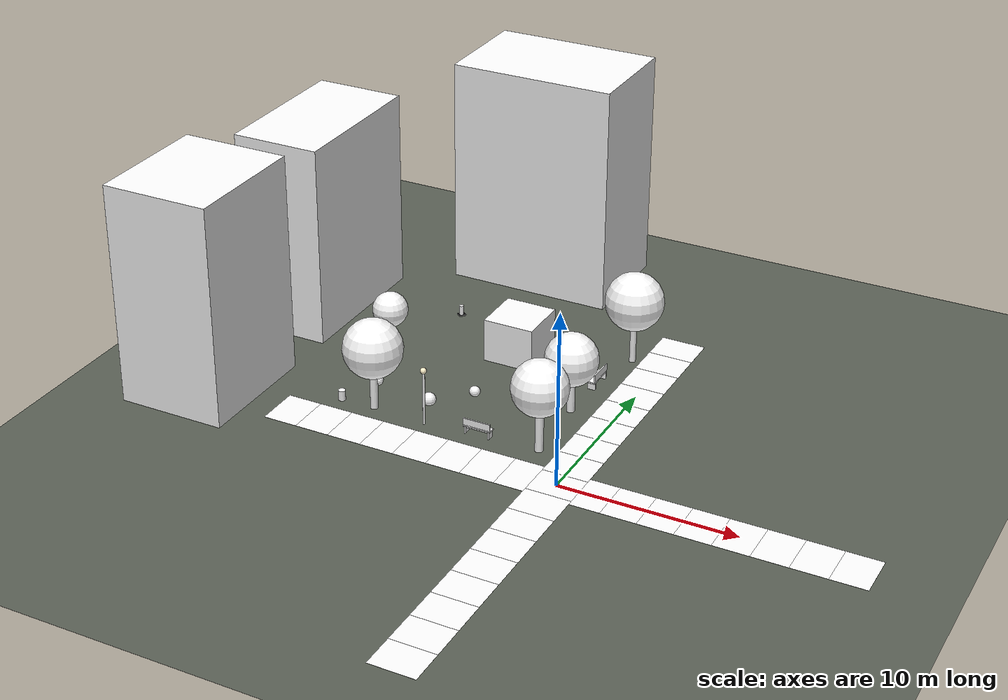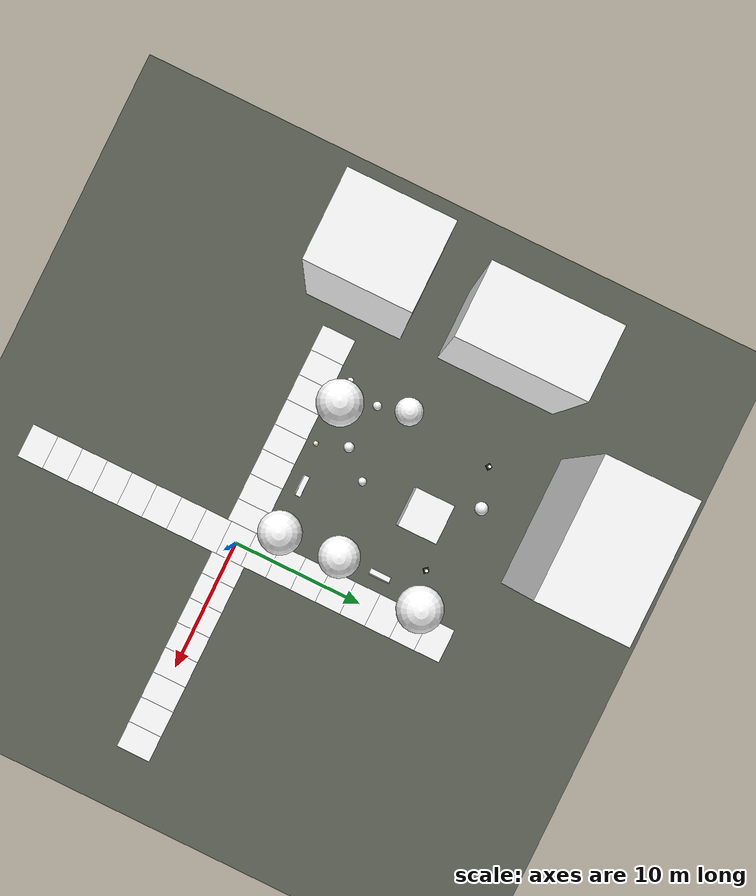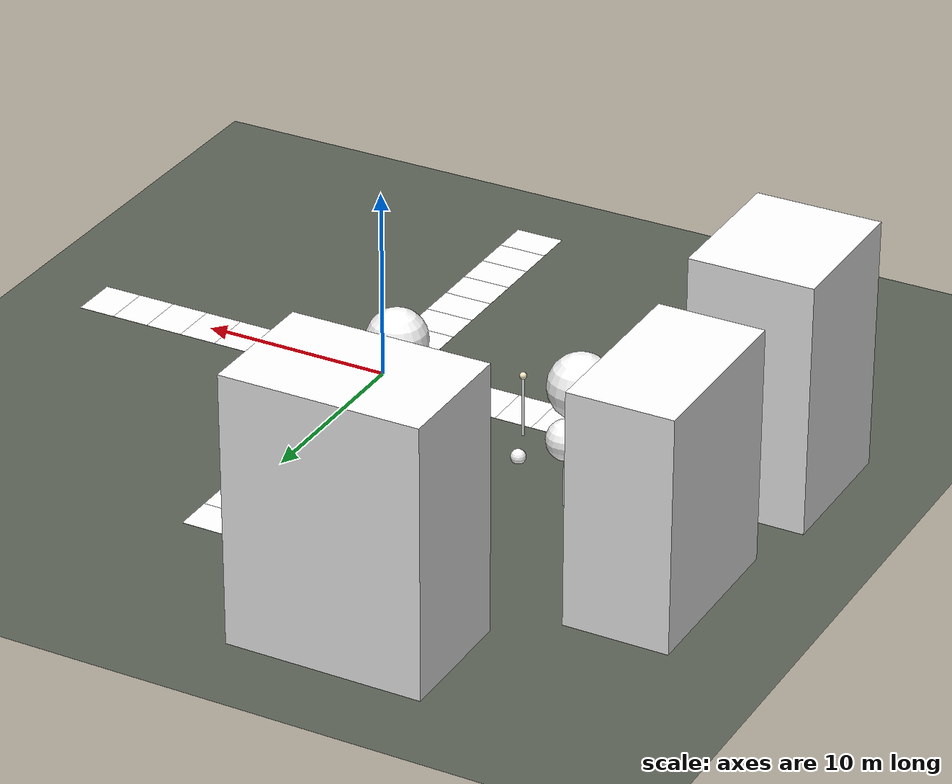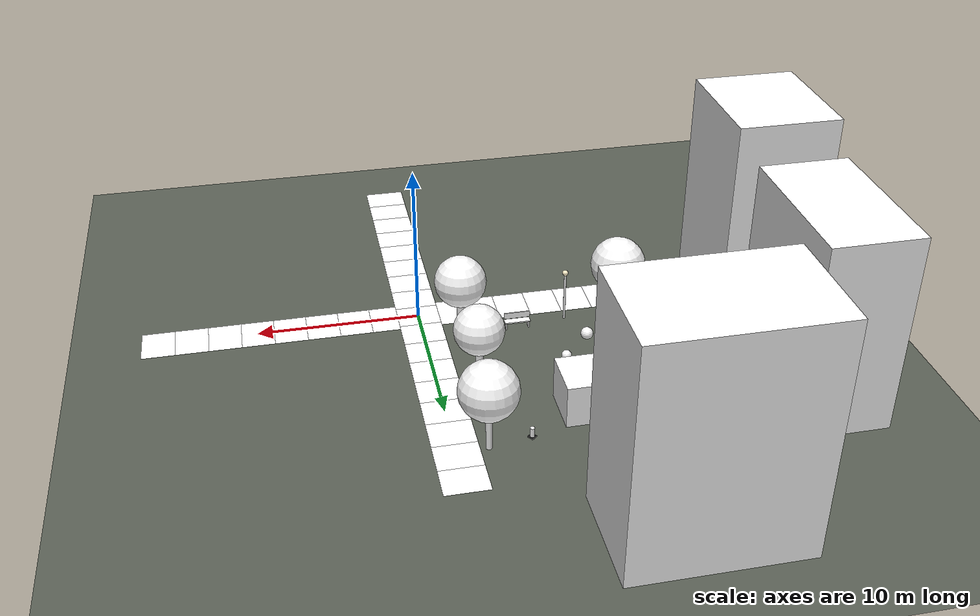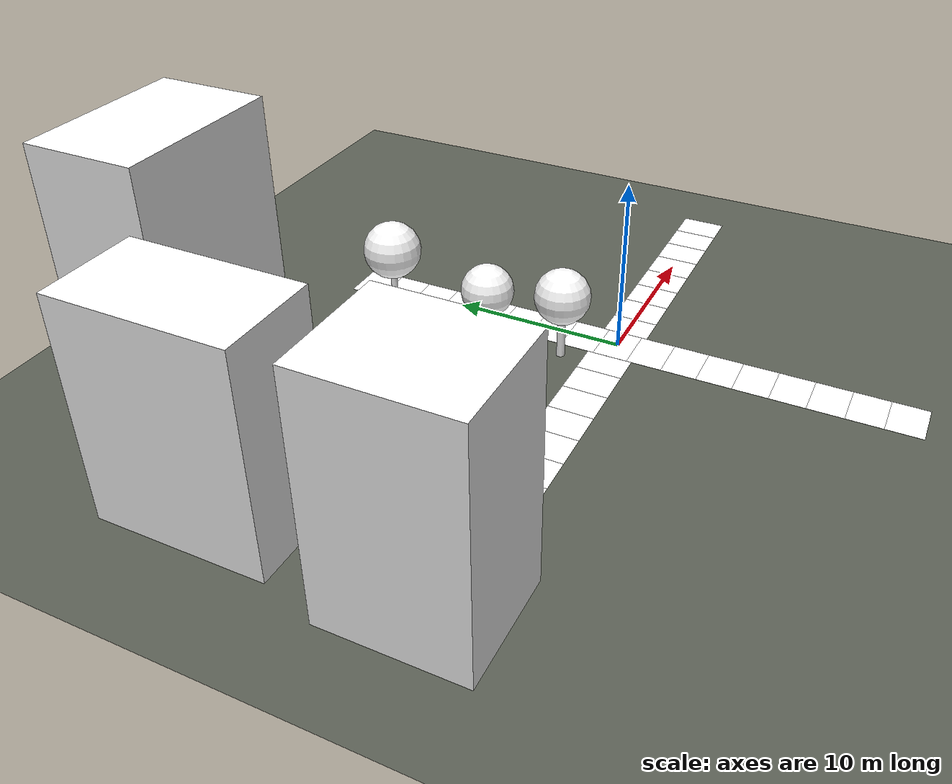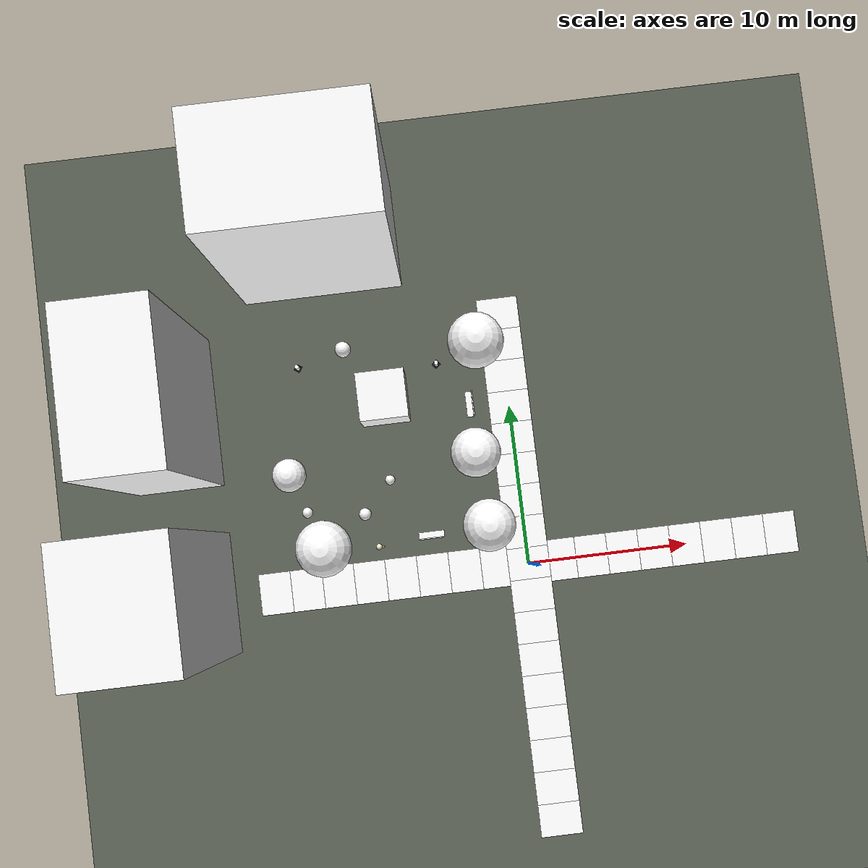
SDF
<sdf version="1.9">
 <world name="park_0">
  <model name="ground_plane">
   <static>true</static>
   <link name="link">
    <collision name="collision">
     <geometry><plane><normal>0 0 1</normal><size>300.000 300.000</size></plane></geometry>
     <surface><friction><ode><mu>1.0</mu><mu2>1.0</mu2></ode></friction></surface>
    </collision>
    <visual name="visual">
     <geometry><plane><normal>0 0 1</normal><size>300.000 300.000</size></plane></geometry>
     <material>
      <ambient>0.350 0.370 0.330 1</ambient>
      <diffuse>0.350 0.370 0.330 1</diffuse>
      <specular>0.08 0.08 0.08 1</specular>
     </material>
    </visual>
   </link>
  </model>
  <model name="paths_2">
   <static>true</static>
   <link name="link">
    <visual name="v0">
     <pose>-16.000 0.000 0.008 0.0000 0.0000 0.0000</pose>
     <geometry><plane><normal>0 0 1</normal><size>2.000 2.600</size></plane></geometry>
     <material>
      <ambient>1.000 1.000 1.000 1</ambient>
      <diffuse>1.000 1.000 1.000 1</diffuse>
      <specular>0.08 0.08 0.08 1</specular>
      <pbr>
       <metal>
        <albedo_map>model://omnivla_textures/materials/textures/paving.png</albedo_map>
        <roughness>0.85</roughness>
        <metalness>0.0</metalness>
       </metal>
      </pbr>
     </material>
    </visual>
    <visual name="v1">
     <pose>0.000 -16.000 0.009 0.0000 0.0000 0.0000</pose>
     <geometry><plane><normal>0 0 1</normal><size>2.600 2.000</size></plane></geometry>
     <material>
      <ambient>1.000 1.000 1.000 1</ambient>
      <diffuse>1.000 1.000 1.000 1</diffuse>
      <specular>0.08 0.08 0.08 1</specular>
      <pbr>
       <metal>
        <albedo_map>model://omnivla_textures/materials/textures/paving.png</albedo_map>
        <roughness>0.85</roughness>
        <metalness>0.0</metalness>
       </metal>
      </pbr>
     </material>
    </visual>
    <visual name="v2">
     <pose>-14.000 0.000 0.008 0.0000 0.0000 0.0000</pose>
     <geometry><plane><normal>0 0 1</normal><size>2.000 2.600</size></plane></geometry>
     <material>
      <ambient>1.000 1.000 1.000 1</ambient>
      <diffuse>1.000 1.000 1.000 1</diffuse>
      <specular>0.08 0.08 0.08 1</specular>
      <pbr>
       <metal>
        <albedo_map>model://omnivla_textures/materials/textures/paving.png</albedo_map>
        <roughness>0.85</roughness>
        <metalness>0.0</metalness>
       </metal>
      </pbr>
     </material>
    </visual>
    <visual name="v3">
     <pose>0.000 -14.000 0.009 0.0000 0.0000 0.0000</pose>
     <geometry><plane><normal>0 0 1</normal><size>2.600 2.000</size></plane></geometry>
     <material>
      <ambient>1.000 1.000 1.000 1</ambient>
      <diffuse>1.000 1.000 1.000 1</diffuse>
      <specular>0.08 0.08 0.08 1</specular>
      <pbr>
       <metal>
        <albedo_map>model://omnivla_textures/materials/textures/paving.png</albedo_map>
        <roughness>0.85</roughness>
        <metalness>0.0</metalness>
       </metal>
      </pbr>
     </material>
    </visual>
    <visual name="v4">
     <pose>-12.000 0.000 0.008 0.0000 0.0000 0.0000</pose>
     <geometry><plane><normal>0 0 1</normal><size>2.000 2.600</size></plane></geometry>
     <material>
      <ambient>1.000 1.000 1.000 1</ambient>
      <diffuse>1.000 1.000 1.000 1</diffuse>
      <specular>0.08 0.08 0.08 1</specular>
      <pbr>
       <metal>
        <albedo_map>model://omnivla_textures/materials/textures/paving.png</albedo_map>
        <roughness>0.85</roughness>
        <metalness>0.0</metalness>
       </metal>
      </pbr>
     </material>
    </visual>
    <visual name="v5">
     <pose>0.000 -12.000 0.009 0.0000 0.0000 0.0000</pose>
     <geometry><plane><normal>0 0 1</normal><size>2.600 2.000</size></plane></geometry>
     <material>
      <ambient>1.000 1.000 1.000 1</ambient>
      <diffuse>1.000 1.000 1.000 1</diffuse>
      <specular>0.08 0.08 0.08 1</specular>
      <pbr>
       <metal>
        <albedo_map>model://omnivla_textures/materials/textures/paving.png</albedo_map>
        <roughness>0.85</roughness>
        <metalness>0.0</metalness>
       </metal>
      </pbr>
     </material>
    </visual>
    <visual name="v6">
     <pose>-10.000 0.000 0.008 0.0000 0.0000 0.0000</pose>
     <geometry><plane><normal>0 0 1</normal><size>2.000 2.600</size></plane></geometry>
     <material>
      <ambient>1.000 1.000 1.000 1</ambient>
      <diffuse>1.000 1.000 1.000 1</diffuse>
      <specular>0.08 0.08 0.08 1</specular>
      <pbr>
       <metal>
        <albedo_map>model://omnivla_textures/materials/textures/paving.png</albedo_map>
        <roughness>0.85</roughness>
        <metalness>0.0</metalness>
       </metal>
      </pbr>
     </material>
    </visual>
    <visual name="v7">
     <pose>0.000 -10.000 0.009 0.0000 0.0000 0.0000</pose>
     <geometry><plane><normal>0 0 1</normal><size>2.600 2.000</size></plane></geometry>
     <material>
      <ambient>1.000 1.000 1.000 1</ambient>
      <diffuse>1.000 1.000 1.000 1</diffuse>
      <specular>0.08 0.08 0.08 1</specular>
      <pbr>
       <metal>
        <albedo_map>model://omnivla_textures/materials/textures/paving.png</albedo_map>
        <roughness>0.85</roughness>
        <metalness>0.0</metalness>
       </metal>
      </pbr>
     </material>
    </visual>
    <visual name="v8">
     <pose>-8.000 0.000 0.008 0.0000 0.0000 0.0000</pose>
     <geometry><plane><normal>0 0 1</normal><size>2.000 2.600</size></plane></geometry>
     <material>
      <ambient>1.000 1.000 1.000 1</ambient>
      <diffuse>1.000 1.000 1.000 1</diffuse>
      <specular>0.08 0.08 0.08 1</specular>
      <pbr>
       <metal>
        <albedo_map>model://omnivla_textures/materials/textures/paving.png</albedo_map>
        <roughness>0.85</roughness>
        <metalness>0.0</metalness>
       </metal>
      </pbr>
     </material>
    </visual>
    <visual name="v9">
     <pose>0.000 -8.000 0.009 0.0000 0.0000 0.0000</pose>
     <geometry><plane><normal>0 0 1</normal><size>2.600 2.000</size></plane></geometry>
     <material>
      <ambient>1.000 1.000 1.000 1</ambient>
      <diffuse>1.000 1.000 1.000 1</diffuse>
      <specular>0.08 0.08 0.08 1</specular>
      <pbr>
       <metal>
        <albedo_map>model://omnivla_textures/materials/textures/paving.png</albedo_map>
        <roughness>0.85</roughness>
        <metalness>0.0</metalness>
       </metal>
      </pbr>
     </material>
    </visual>
    <visual name="v10">
     <pose>-6.000 0.000 0.008 0.0000 0.0000 0.0000</pose>
     <geometry><plane><normal>0 0 1</normal><size>2.000 2.600</size></plane></geometry>
     <material>
      <ambient>1.000 1.000 1.000 1</ambient>
      <diffuse>1.000 1.000 1.000 1</diffuse>
      <specular>0.08 0.08 0.08 1</specular>
      <pbr>
       <metal>
        <albedo_map>model://omnivla_textures/materials/textures/paving.png</albedo_map>
        <roughness>0.85</roughness>
        <metalness>0.0</metalness>
       </metal>
      </pbr>
     </material>
    </visual>
    <visual name="v11">
     <pose>0.000 -6.000 0.009 0.0000 0.0000 0.0000</pose>
     <geometry><plane><normal>0 0 1</normal><size>2.600 2.000</size></plane></geometry>
     <material>
      <ambient>1.000 1.000 1.000 1</ambient>
      <diffuse>1.000 1.000 1.000 1</diffuse>
      <specular>0.08 0.08 0.08 1</specular>
      <pbr>
       <metal>
        <albedo_map>model://omnivla_textures/materials/textures/paving.png</albedo_map>
        <roughness>0.85</roughness>
        <metalness>0.0</metalness>
       </metal>
      </pbr>
     </material>
    </visual>
    <visual name="v12">
     <pose>-4.000 0.000 0.008 0.0000 0.0000 0.0000</pose>
     <geometry><plane><normal>0 0 1</normal><size>2.000 2.600</size></plane></geometry>
     <material>
      <ambient>1.000 1.000 1.000 1</ambient>
      <diffuse>1.000 1.000 1.000 1</diffuse>
      <specular>0.08 0.08 0.08 1</specular>
      <pbr>
       <metal>
        <albedo_map>model://omnivla_textures/materials/textures/paving.png</albedo_map>
        <roughness>0.85</roughness>
        <metalness>0.0</metalness>
       </metal>
      </pbr>
     </material>
    </visual>
    <visual name="v13">
     <pose>0.000 -4.000 0.009 0.0000 0.0000 0.0000</pose>
     <geometry><plane><normal>0 0 1</normal><size>2.600 2.000</size></plane></geometry>
     <material>
      <ambient>1.000 1.000 1.000 1</ambient>
      <diffuse>1.000 1.000 1.000 1</diffuse>
      <specular>0.08 0.08 0.08 1</specular>
      <pbr>
       <metal>
        <albedo_map>model://omnivla_textures/materials/textures/paving.png</albedo_map>
        <roughness>0.85</roughness>
        <metalness>0.0</metalness>
       </metal>
      </pbr>
     </material>
    </visual>
    <visual name="v14">
     <pose>-2.000 0.000 0.008 0.0000 0.0000 0.0000</pose>
     <geometry><plane><normal>0 0 1</normal><size>2.000 2.600</size></plane></geometry>
     <material>
      <ambient>1.000 1.000 1.000 1</ambient>
      <diffuse>1.000 1.000 1.000 1</diffuse>
      <specular>0.08 0.08 0.08 1</specular>
      <pbr>
       <metal>
        <albedo_map>model://omnivla_textures/materials/textures/paving.png</albedo_map>
        <roughness>0.85</roughness>
        <metalness>0.0</metalness>
       </metal>
      </pbr>
     </material>
    </visual>
    <visual name="v15">
     <pose>0.000 -2.000 0.009 0.0000 0.0000 0.0000</pose>
     <geometry><plane><normal>0 0 1</normal><size>2.600 2.000</size></plane></geometry>
     <material>
      <ambient>1.000 1.000 1.000 1</ambient>
      <diffuse>1.000 1.000 1.000 1</diffuse>
      <specular>0.08 0.08 0.08 1</specular>
      <pbr>
       <metal>
        <albedo_map>model://omnivla_textures/materials/textures/paving.png</albedo_map>
        <roughness>0.85</roughness>
        <metalness>0.0</metalness>
       </metal>
      </pbr>
     </material>
    </visual>
    <visual name="v16">
     <pose>0.000 0.000 0.008 0.0000 0.0000 0.0000</pose>
     <geometry><plane><normal>0 0 1</normal><size>2.000 2.600</size></plane></geometry>
     <material>
      <ambient>1.000 1.000 1.000 1</ambient>
      <diffuse>1.000 1.000 1.000 1</diffuse>
      <specular>0.08 0.08 0.08 1</specular>
      <pbr>
       <metal>
        <albedo_map>model://omnivla_textures/materials/textures/paving.png</albedo_map>
        <roughness>0.85</roughness>
        <metalness>0.0</metalness>
       </metal>
      </pbr>
     </material>
    </visual>
    <visual name="v17">
     <pose>0.000 0.000 0.009 0.0000 0.0000 0.0000</pose>
     <geometry><plane><normal>0 0 1</normal><size>2.600 2.000</size></plane></geometry>
     <material>
      <ambient>1.000 1.000 1.000 1</ambient>
      <diffuse>1.000 1.000 1.000 1</diffuse>
      <specular>0.08 0.08 0.08 1</specular>
      <pbr>
       <metal>
        <albedo_map>model://omnivla_textures/materials/textures/paving.png</albedo_map>
        <roughness>0.85</roughness>
        <metalness>0.0</metalness>
       </metal>
      </pbr>
     </material>
    </visual>
    <visual name="v18">
     <pose>2.000 0.000 0.008 0.0000 0.0000 0.0000</pose>
     <geometry><plane><normal>0 0 1</normal><size>2.000 2.600</size></plane></geometry>
     <material>
      <ambient>1.000 1.000 1.000 1</ambient>
      <diffuse>1.000 1.000 1.000 1</diffuse>
      <specular>0.08 0.08 0.08 1</specular>
      <pbr>
       <metal>
        <albedo_map>model://omnivla_textures/materials/textures/paving.png</albedo_map>
        <roughness>0.85</roughness>
        <metalness>0.0</metalness>
       </metal>
      </pbr>
     </material>
    </visual>
    <visual name="v19">
     <pose>0.000 2.000 0.009 0.0000 0.0000 0.0000</pose>
     <geometry><plane><normal>0 0 1</normal><size>2.600 2.000</size></plane></geometry>
     <material>
      <ambient>1.000 1.000 1.000 1</ambient>
      <diffuse>1.000 1.000 1.000 1</diffuse>
      <specular>0.08 0.08 0.08 1</specular>
      <pbr>
       <metal>
        <albedo_map>model://omnivla_textures/materials/textures/paving.png</albedo_map>
        <roughness>0.85</roughness>
        <metalness>0.0</metalness>
       </metal>
      </pbr>
     </material>
    </visual>
    <visual name="v20">
     <pose>4.000 0.000 0.008 0.0000 0.0000 0.0000</pose>
     <geometry><plane><normal>0 0 1</normal><size>2.000 2.600</size></plane></geometry>
     <material>
      <ambient>1.000 1.000 1.000 1</ambient>
      <diffuse>1.000 1.000 1.000 1</diffuse>
      <specular>0.08 0.08 0.08 1</specular>
      <pbr>
       <metal>
        <albedo_map>model://omnivla_textures/materials/textures/paving.png</albedo_map>
        <roughness>0.85</roughness>
        <metalness>0.0</metalness>
       </metal>
      </pbr>
     </material>
    </visual>
    <visual name="v21">
     <pose>0.000 4.000 0.009 0.0000 0.0000 0.0000</pose>
     <geometry><plane><normal>0 0 1</normal><size>2.600 2.000</size></plane></geometry>
     <material>
      <ambient>1.000 1.000 1.000 1</ambient>
      <diffuse>1.000 1.000 1.000 1</diffuse>
      <specular>0.08 0.08 0.08 1</specular>
      <pbr>
       <metal>
        <albedo_map>model://omnivla_textures/materials/textures/paving.png</albedo_map>
        <roughness>0.85</roughness>
        <metalness>0.0</metalness>
       </metal>
      </pbr>
     </material>
    </visual>
    <visual name="v22">
     <pose>6.000 0.000 0.008 0.0000 0.0000 0.0000</pose>
     <geometry><plane><normal>0 0 1</normal><size>2.000 2.600</size></plane></geometry>
     <material>
      <ambient>1.000 1.000 1.000 1</ambient>
      <diffuse>1.000 1.000 1.000 1</diffuse>
      <specular>0.08 0.08 0.08 1</specular>
      <pbr>
       <metal>
        <albedo_map>model://omnivla_textures/materials/textures/paving.png</albedo_map>
        <roughness>0.85</roughness>
        <metalness>0.0</metalness>
       </metal>
      </pbr>
     </material>
    </visual>
    <visual name="v23">
     <pose>0.000 6.000 0.009 0.0000 0.0000 0.0000</pose>
     <geometry><plane><normal>0 0 1</normal><size>2.600 2.000</size></plane></geometry>
     <material>
      <ambient>1.000 1.000 1.000 1</ambient>
      <diffuse>1.000 1.000 1.000 1</diffuse>
      <specular>0.08 0.08 0.08 1</specular>
      <pbr>
       <metal>
        <albedo_map>model://omnivla_textures/materials/textures/paving.png</albedo_map>
        <roughness>0.85</roughness>
        <metalness>0.0</metalness>
       </metal>
      </pbr>
     </material>
    </visual>
    <visual name="v24">
     <pose>8.000 0.000 0.008 0.0000 0.0000 0.0000</pose>
     <geometry><plane><normal>0 0 1</normal><size>2.000 2.600</size></plane></geometry>
     <material>
      <ambient>1.000 1.000 1.000 1</ambient>
      <diffuse>1.000 1.000 1.000 1</diffuse>
      <specular>0.08 0.08 0.08 1</specular>
      <pbr>
       <metal>
        <albedo_map>model://omnivla_textures/materials/textures/paving.png</albedo_map>
        <roughness>0.85</roughness>
        <metalness>0.0</metalness>
       </metal>
      </pbr>
     </material>
    </visual>
    <visual name="v25">
     <pose>0.000 8.000 0.009 0.0000 0.0000 0.0000</pose>
     <geometry><plane><normal>0 0 1</normal><size>2.600 2.000</size></plane></geometry>
     <material>
      <ambient>1.000 1.000 1.000 1</ambient>
      <diffuse>1.000 1.000 1.000 1</diffuse>
      <specular>0.08 0.08 0.08 1</specular>
      <pbr>
       <metal>
        <albedo_map>model://omnivla_textures/materials/textures/paving.png</albedo_map>
        <roughness>0.85</roughness>
        <metalness>0.0</metalness>
       </metal>
      </pbr>
     </material>
    </visual>
    <visual name="v26">
     <pose>10.000 0.000 0.008 0.0000 0.0000 0.0000</pose>
     <geometry><plane><normal>0 0 1</normal><size>2.000 2.600</size></plane></geometry>
     <material>
      <ambient>1.000 1.000 1.000 1</ambient>
      <diffuse>1.000 1.000 1.000 1</diffuse>
      <specular>0.08 0.08 0.08 1</specular>
      <pbr>
       <metal>
        <albedo_map>model://omnivla_textures/materials/textures/paving.png</albedo_map>
        <roughness>0.85</roughness>
        <metalness>0.0</metalness>
       </metal>
      </pbr>
     </material>
    </visual>
    <visual name="v27">
     <pose>0.000 10.000 0.009 0.0000 0.0000 0.0000</pose>
     <geometry><plane><normal>0 0 1</normal><size>2.600 2.000</size></plane></geometry>
     <material>
      <ambient>1.000 1.000 1.000 1</ambient>
      <diffuse>1.000 1.000 1.000 1</diffuse>
      <specular>0.08 0.08 0.08 1</specular>
      <pbr>
       <metal>
        <albedo_map>model://omnivla_textures/materials/textures/paving.png</albedo_map>
        <roughness>0.85</roughness>
        <metalness>0.0</metalness>
       </metal>
      </pbr>
     </material>
    </visual>
    <visual name="v28">
     <pose>12.000 0.000 0.008 0.0000 0.0000 0.0000</pose>
     <geometry><plane><normal>0 0 1</normal><size>2.000 2.600</size></plane></geometry>
     <material>
      <ambient>1.000 1.000 1.000 1</ambient>
      <diffuse>1.000 1.000 1.000 1</diffuse>
      <specular>0.08 0.08 0.08 1</specular>
      <pbr>
       <metal>
        <albedo_map>model://omnivla_textures/materials/textures/paving.png</albedo_map>
        <roughness>0.85</roughness>
        <metalness>0.0</metalness>
       </metal>
      </pbr>
     </material>
    </visual>
    <visual name="v29">
     <pose>0.000 12.000 0.009 0.0000 0.0000 0.0000</pose>
     <geometry><plane><normal>0 0 1</normal><size>2.600 2.000</size></plane></geometry>
     <material>
      <ambient>1.000 1.000 1.000 1</ambient>
      <diffuse>1.000 1.000 1.000 1</diffuse>
      <specular>0.08 0.08 0.08 1</specular>
      <pbr>
       <metal>
        <albedo_map>model://omnivla_textures/materials/textures/paving.png</albedo_map>
        <roughness>0.85</roughness>
        <metalness>0.0</metalness>
       </metal>
      </pbr>
     </material>
    </visual>
    <visual name="v30">
     <pose>14.000 0.000 0.008 0.0000 0.0000 0.0000</pose>
     <geometry><plane><normal>0 0 1</normal><size>2.000 2.600</size></plane></geometry>
     <material>
      <ambient>1.000 1.000 1.000 1</ambient>
      <diffuse>1.000 1.000 1.000 1</diffuse>
      <specular>0.08 0.08 0.08 1</specular>
      <pbr>
       <metal>
        <albedo_map>model://omnivla_textures/materials/textures/paving.png</albedo_map>
        <roughness>0.85</roughness>
        <metalness>0.0</metalness>
       </metal>
      </pbr>
     </material>
    </visual>
    <visual name="v31">
     <pose>0.000 14.000 0.009 0.0000 0.0000 0.0000</pose>
     <geometry><plane><normal>0 0 1</normal><size>2.600 2.000</size></plane></geometry>
     <material>
      <ambient>1.000 1.000 1.000 1</ambient>
      <diffuse>1.000 1.000 1.000 1</diffuse>
      <specular>0.08 0.08 0.08 1</specular>
      <pbr>
       <metal>
        <albedo_map>model://omnivla_textures/materials/textures/paving.png</albedo_map>
        <roughness>0.85</roughness>
        <metalness>0.0</metalness>
       </metal>
      </pbr>
     </material>
    </visual>
    <visual name="v32">
     <pose>16.000 0.000 0.008 0.0000 0.0000 0.0000</pose>
     <geometry><plane><normal>0 0 1</normal><size>2.000 2.600</size></plane></geometry>
     <material>
      <ambient>1.000 1.000 1.000 1</ambient>
      <diffuse>1.000 1.000 1.000 1</diffuse>
      <specular>0.08 0.08 0.08 1</specular>
      <pbr>
       <metal>
        <albedo_map>model://omnivla_textures/materials/textures/paving.png</albedo_map>
        <roughness>0.85</roughness>
        <metalness>0.0</metalness>
       </metal>
      </pbr>
     </material>
    </visual>
    <visual name="v33">
     <pose>0.000 16.000 0.009 0.0000 0.0000 0.0000</pose>
     <geometry><plane><normal>0 0 1</normal><size>2.600 2.000</size></plane></geometry>
     <material>
      <ambient>1.000 1.000 1.000 1</ambient>
      <diffuse>1.000 1.000 1.000 1</diffuse>
      <specular>0.08 0.08 0.08 1</specular>
      <pbr>
       <metal>
        <albedo_map>model://omnivla_textures/materials/textures/paving.png</albedo_map>
        <roughness>0.85</roughness>
        <metalness>0.0</metalness>
       </metal>
      </pbr>
     </material>
    </visual>
   </link>
  </model>
  <model name="building_11">
   <static>true</static>
   <pose>-10.872 21.767 0.000 0.0000 0.0000 0.0000</pose>
   <link name="link">
    <collision name="c0">
     <pose>0.000 0.000 6.914 0.0000 0.0000 0.0000</pose>
     <geometry><box><size>9.989 6.535 13.828</size></box></geometry>
    </collision>
    <visual name="v0">
     <pose>0.000 0.000 6.914 0.0000 0.0000 0.0000</pose>
     <geometry><box><size>9.989 6.535 13.828</size></box></geometry>
     <material>
      <ambient>1.000 1.000 1.000 1</ambient>
      <diffuse>1.000 1.000 1.000 1</diffuse>
      <specular>0.08 0.08 0.08 1</specular>
      <pbr>
       <metal>
        <albedo_map>model://omnivla_textures/materials/textures/facade_red.png</albedo_map>
        <roughness>0.85</roughness>
        <metalness>0.0</metalness>
       </metal>
      </pbr>
     </material>
    </visual>
   </link>
  </model>
  <model name="building_15">
   <static>true</static>
   <pose>-21.676 0.377 0.000 0.0000 0.0000 1.5708</pose>
   <link name="link">
    <collision name="c0">
     <pose>0.000 0.000 6.506 0.0000 0.0000 0.0000</pose>
     <geometry><box><size>7.566 6.352 13.012</size></box></geometry>
    </collision>
    <visual name="v0">
     <pose>0.000 0.000 6.506 0.0000 0.0000 0.0000</pose>
     <geometry><box><size>7.566 6.352 13.012</size></box></geometry>
     <material>
      <ambient>1.000 1.000 1.000 1</ambient>
      <diffuse>1.000 1.000 1.000 1</diffuse>
      <specular>0.08 0.08 0.08 1</specular>
      <pbr>
       <metal>
        <albedo_map>model://omnivla_textures/materials/textures/facade_gray.png</albedo_map>
        <roughness>0.85</roughness>
        <metalness>0.0</metalness>
       </metal>
      </pbr>
     </material>
    </visual>
   </link>
  </model>
  <model name="building_16">
   <static>true</static>
   <pose>-21.168 11.826 0.000 0.0000 0.0000 1.5708</pose>
   <link name="link">
    <collision name="c0">
     <pose>0.000 0.000 6.042 0.0000 0.0000 0.0000</pose>
     <geometry><box><size>9.331 5.336 12.084</size></box></geometry>
    </collision>
    <visual name="v0">
     <pose>0.000 0.000 6.042 0.0000 0.0000 0.0000</pose>
     <geometry><box><size>9.331 5.336 12.084</size></box></geometry>
     <material>
      <ambient>1.000 1.000 1.000 1</ambient>
      <diffuse>1.000 1.000 1.000 1</diffuse>
      <specular>0.08 0.08 0.08 1</specular>
      <pbr>
       <metal>
        <albedo_map>model://omnivla_textures/materials/textures/facade_beige.png</albedo_map>
        <roughness>0.85</roughness>
        <metalness>0.0</metalness>
       </metal>
      </pbr>
     </material>
    </visual>
   </link>
  </model>
  <model name="building_17">
   <static>true</static>
   <pose>-7.819 11.295 0.000 0.0000 0.0000 0.0000</pose>
   <link name="link">
    <collision name="c0">
     <pose>0.000 0.000 1.300 0.0000 0.0000 0.0000</pose>
     <geometry><box><size>3.000 3.000 2.600</size></box></geometry>
    </collision>
    <visual name="v0">
     <pose>0.000 0.000 1.300 0.0000 0.0000 0.0000</pose>
     <geometry><box><size>3.000 3.000 2.600</size></box></geometry>
     <material>
      <ambient>1.000 1.000 1.000 1</ambient>
      <diffuse>1.000 1.000 1.000 1</diffuse>
      <specular>0.08 0.08 0.08 1</specular>
      <pbr>
       <metal>
        <albedo_map>model://omnivla_textures/materials/textures/facade_beige.png</albedo_map>
        <roughness>0.85</roughness>
        <metalness>0.0</metalness>
       </metal>
      </pbr>
     </material>
    </visual>
   </link>
  </model>
  <model name="tree_23">
   <static>true</static>
   <pose>-1.789 13.638 0.000 0.0000 0.0000 -0.0007</pose>
   <link name="link">
    <collision name="c0">
     <pose>0.000 0.000 1.410 0.0000 0.0000 0.0000</pose>
     <geometry><cylinder><radius>0.183</radius><length>2.820</length></cylinder></geometry>
    </collision>
    <visual name="v0">
     <pose>0.000 0.000 1.410 0.0000 0.0000 0.0000</pose>
     <geometry><cylinder><radius>0.183</radius><length>2.820</length></cylinder></geometry>
     <material>
      <ambient>1.000 1.000 1.000 1</ambient>
      <diffuse>1.000 1.000 1.000 1</diffuse>
      <specular>0.08 0.08 0.08 1</specular>
      <pbr>
       <metal>
        <albedo_map>model://omnivla_textures/materials/textures/bark.png</albedo_map>
        <roughness>0.85</roughness>
        <metalness>0.0</metalness>
       </metal>
      </pbr>
     </material>
    </visual>
    <visual name="v1">
     <pose>0.000 0.000 3.838 0.0000 0.0000 0.0000</pose>
     <geometry><sphere><radius>1.697</radius></sphere></geometry>
     <material>
      <ambient>1.000 1.000 1.000 1</ambient>
      <diffuse>1.000 1.000 1.000 1</diffuse>
      <specular>0.08 0.08 0.08 1</specular>
      <pbr>
       <metal>
        <albedo_map>model://omnivla_textures/materials/textures/leaves.png</albedo_map>
        <roughness>0.85</roughness>
        <metalness>0.0</metalness>
       </metal>
      </pbr>
     </material>
    </visual>
   </link>
  </model>
  <model name="tree_25">
   <static>true</static>
   <pose>-2.560 7.035 0.000 0.0000 0.0000 1.3266</pose>
   <link name="link">
    <collision name="c0">
     <pose>0.000 0.000 1.157 0.0000 0.0000 0.0000</pose>
     <geometry><cylinder><radius>0.233</radius><length>2.315</length></cylinder></geometry>
    </collision>
    <visual name="v0">
     <pose>0.000 0.000 1.157 0.0000 0.0000 0.0000</pose>
     <geometry><cylinder><radius>0.233</radius><length>2.315</length></cylinder></geometry>
     <material>
      <ambient>1.000 1.000 1.000 1</ambient>
      <diffuse>1.000 1.000 1.000 1</diffuse>
      <specular>0.08 0.08 0.08 1</specular>
      <pbr>
       <metal>
        <albedo_map>model://omnivla_textures/materials/textures/bark.png</albedo_map>
        <roughness>0.85</roughness>
        <metalness>0.0</metalness>
       </metal>
      </pbr>
     </material>
    </visual>
    <visual name="v1">
     <pose>0.000 0.000 3.221 0.0000 0.0000 0.0000</pose>
     <geometry><sphere><radius>1.510</radius></sphere></geometry>
     <material>
      <ambient>1.000 1.000 1.000 1</ambient>
      <diffuse>1.000 1.000 1.000 1</diffuse>
      <specular>0.08 0.08 0.08 1</specular>
      <pbr>
       <metal>
        <albedo_map>model://omnivla_textures/materials/textures/leaves.png</albedo_map>
        <roughness>0.85</roughness>
        <metalness>0.0</metalness>
       </metal>
      </pbr>
     </material>
    </visual>
   </link>
  </model>
  <model name="tree_29">
   <static>true</static>
   <pose>-13.785 6.960 0.000 0.0000 0.0000 0.7186</pose>
   <link name="link">
    <collision name="c0">
     <pose>0.000 0.000 1.460 0.0000 0.0000 0.0000</pose>
     <geometry><cylinder><radius>0.143</radius><length>2.919</length></cylinder></geometry>
    </collision>
    <visual name="v0">
     <pose>0.000 0.000 1.460 0.0000 0.0000 0.0000</pose>
     <geometry><cylinder><radius>0.143</radius><length>2.919</length></cylinder></geometry>
     <material>
      <ambient>1.000 1.000 1.000 1</ambient>
      <diffuse>1.000 1.000 1.000 1</diffuse>
      <specular>0.08 0.08 0.08 1</specular>
      <pbr>
       <metal>
        <albedo_map>model://omnivla_textures/materials/textures/bark.png</albedo_map>
        <roughness>0.85</roughness>
        <metalness>0.0</metalness>
       </metal>
      </pbr>
     </material>
    </visual>
    <visual name="v1">
     <pose>0.000 0.000 3.526 0.0000 0.0000 0.0000</pose>
     <geometry><sphere><radius>1.011</radius></sphere></geometry>
     <material>
      <ambient>1.000 1.000 1.000 1</ambient>
      <diffuse>1.000 1.000 1.000 1</diffuse>
      <specular>0.08 0.08 0.08 1</specular>
      <pbr>
       <metal>
        <albedo_map>model://omnivla_textures/materials/textures/leaves.png</albedo_map>
        <roughness>0.85</roughness>
        <metalness>0.0</metalness>
       </metal>
      </pbr>
     </material>
    </visual>
   </link>
  </model>
  <model name="tree_50">
   <static>true</static>
   <pose>-12.218 2.363 0.000 0.0000 0.0000 -1.9023</pose>
   <link name="link">
    <collision name="c0">
     <pose>0.000 0.000 1.344 0.0000 0.0000 0.0000</pose>
     <geometry><cylinder><radius>0.221</radius><length>2.689</length></cylinder></geometry>
    </collision>
    <visual name="v0">
     <pose>0.000 0.000 1.344 0.0000 0.0000 0.0000</pose>
     <geometry><cylinder><radius>0.221</radius><length>2.689</length></cylinder></geometry>
     <material>
      <ambient>1.000 1.000 1.000 1</ambient>
      <diffuse>1.000 1.000 1.000 1</diffuse>
      <specular>0.08 0.08 0.08 1</specular>
      <pbr>
       <metal>
        <albedo_map>model://omnivla_textures/materials/textures/bark.png</albedo_map>
        <roughness>0.85</roughness>
        <metalness>0.0</metalness>
       </metal>
      </pbr>
     </material>
    </visual>
    <visual name="v1">
     <pose>0.000 0.000 3.704 0.0000 0.0000 0.0000</pose>
     <geometry><sphere><radius>1.692</radius></sphere></geometry>
     <material>
      <ambient>1.000 1.000 1.000 1</ambient>
      <diffuse>1.000 1.000 1.000 1</diffuse>
      <specular>0.08 0.08 0.08 1</specular>
      <pbr>
       <metal>
        <albedo_map>model://omnivla_textures/materials/textures/leaves.png</albedo_map>
        <roughness>0.85</roughness>
        <metalness>0.0</metalness>
       </metal>
      </pbr>
     </material>
    </visual>
   </link>
  </model>
  <model name="tree_60">
   <static>true</static>
   <pose>-2.288 2.589 0.000 0.0000 0.0000 -2.3707</pose>
   <link name="link">
    <collision name="c0">
     <pose>0.000 0.000 1.442 0.0000 0.0000 0.0000</pose>
     <geometry><cylinder><radius>0.233</radius><length>2.884</length></cylinder></geometry>
    </collision>
    <visual name="v0">
     <pose>0.000 0.000 1.442 0.0000 0.0000 0.0000</pose>
     <geometry><cylinder><radius>0.233</radius><length>2.884</length></cylinder></geometry>
     <material>
      <ambient>1.000 1.000 1.000 1</ambient>
      <diffuse>1.000 1.000 1.000 1</diffuse>
      <specular>0.08 0.08 0.08 1</specular>
      <pbr>
       <metal>
        <albedo_map>model://omnivla_textures/materials/textures/bark.png</albedo_map>
        <roughness>0.85</roughness>
        <metalness>0.0</metalness>
       </metal>
      </pbr>
     </material>
    </visual>
    <visual name="v1">
     <pose>0.000 0.000 3.830 0.0000 0.0000 0.0000</pose>
     <geometry><sphere><radius>1.577</radius></sphere></geometry>
     <material>
      <ambient>1.000 1.000 1.000 1</ambient>
      <diffuse>1.000 1.000 1.000 1</diffuse>
      <specular>0.08 0.08 0.08 1</specular>
      <pbr>
       <metal>
        <albedo_map>model://omnivla_textures/materials/textures/leaves.png</albedo_map>
        <roughness>0.85</roughness>
        <metalness>0.0</metalness>
       </metal>
      </pbr>
     </material>
    </visual>
   </link>
  </model>
  <model name="bench_76">
   <static>true</static>
   <pose>-2.506 10.368 0.000 0.0000 0.0000 1.5708</pose>
   <link name="link">
    <collision name="c0">
     <pose>0.000 0.000 0.450 0.0000 0.0000 0.0000</pose>
     <geometry><box><size>1.600 0.450 0.080</size></box></geometry>
    </collision>
    <visual name="v0">
     <pose>0.000 0.000 0.450 0.0000 0.0000 0.0000</pose>
     <geometry><box><size>1.600 0.450 0.080</size></box></geometry>
     <material>
      <ambient>1.000 1.000 1.000 1</ambient>
      <diffuse>1.000 1.000 1.000 1</diffuse>
      <specular>0.08 0.08 0.08 1</specular>
      <pbr>
       <metal>
        <albedo_map>model://omnivla_textures/materials/textures/wood_floor.png</albedo_map>
        <roughness>0.85</roughness>
        <metalness>0.0</metalness>
       </metal>
      </pbr>
     </material>
    </visual>
    <collision name="c1">
     <pose>0.000 -0.200 0.750 0.0000 0.0000 0.0000</pose>
     <geometry><box><size>1.600 0.060 0.400</size></box></geometry>
    </collision>
    <visual name="v1">
     <pose>0.000 -0.200 0.750 0.0000 0.0000 0.0000</pose>
     <geometry><box><size>1.600 0.060 0.400</size></box></geometry>
     <material>
      <ambient>1.000 1.000 1.000 1</ambient>
      <diffuse>1.000 1.000 1.000 1</diffuse>
      <specular>0.08 0.08 0.08 1</specular>
      <pbr>
       <metal>
        <albedo_map>model://omnivla_textures/materials/textures/wood_floor.png</albedo_map>
        <roughness>0.85</roughness>
        <metalness>0.0</metalness>
       </metal>
      </pbr>
     </material>
    </visual>
    <collision name="c2">
     <pose>0.700 0.000 0.225 0.0000 0.0000 0.0000</pose>
     <geometry><box><size>0.080 0.450 0.450</size></box></geometry>
    </collision>
    <visual name="v2">
     <pose>0.700 0.000 0.225 0.0000 0.0000 0.0000</pose>
     <geometry><box><size>0.080 0.450 0.450</size></box></geometry>
     <material>
      <ambient>1.000 1.000 1.000 1</ambient>
      <diffuse>1.000 1.000 1.000 1</diffuse>
      <specular>0.08 0.08 0.08 1</specular>
      <pbr>
       <metal>
        <albedo_map>model://omnivla_textures/materials/textures/metal.png</albedo_map>
        <roughness>0.85</roughness>
        <metalness>0.0</metalness>
       </metal>
      </pbr>
     </material>
    </visual>
    <collision name="c3">
     <pose>-0.700 0.000 0.225 0.0000 0.0000 0.0000</pose>
     <geometry><box><size>0.080 0.450 0.450</size></box></geometry>
    </collision>
    <visual name="v3">
     <pose>-0.700 0.000 0.225 0.0000 0.0000 0.0000</pose>
     <geometry><box><size>0.080 0.450 0.450</size></box></geometry>
     <material>
      <ambient>1.000 1.000 1.000 1</ambient>
      <diffuse>1.000 1.000 1.000 1</diffuse>
      <specular>0.08 0.08 0.08 1</specular>
      <pbr>
       <metal>
        <albedo_map>model://omnivla_textures/materials/textures/metal.png</albedo_map>
        <roughness>0.85</roughness>
        <metalness>0.0</metalness>
       </metal>
      </pbr>
     </material>
    </visual>
   </link>
  </model>
  <model name="bench_118">
   <static>true</static>
   <pose>-5.850 2.477 0.000 0.0000 0.0000 0.0000</pose>
   <link name="link">
    <collision name="c0">
     <pose>0.000 0.000 0.450 0.0000 0.0000 0.0000</pose>
     <geometry><box><size>1.600 0.450 0.080</size></box></geometry>
    </collision>
    <visual name="v0">
     <pose>0.000 0.000 0.450 0.0000 0.0000 0.0000</pose>
     <geometry><box><size>1.600 0.450 0.080</size></box></geometry>
     <material>
      <ambient>1.000 1.000 1.000 1</ambient>
      <diffuse>1.000 1.000 1.000 1</diffuse>
      <specular>0.08 0.08 0.08 1</specular>
      <pbr>
       <metal>
        <albedo_map>model://omnivla_textures/materials/textures/wood_floor.png</albedo_map>
        <roughness>0.85</roughness>
        <metalness>0.0</metalness>
       </metal>
      </pbr>
     </material>
    </visual>
    <collision name="c1">
     <pose>0.000 -0.200 0.750 0.0000 0.0000 0.0000</pose>
     <geometry><box><size>1.600 0.060 0.400</size></box></geometry>
    </collision>
    <visual name="v1">
     <pose>0.000 -0.200 0.750 0.0000 0.0000 0.0000</pose>
     <geometry><box><size>1.600 0.060 0.400</size></box></geometry>
     <material>
      <ambient>1.000 1.000 1.000 1</ambient>
      <diffuse>1.000 1.000 1.000 1</diffuse>
      <specular>0.08 0.08 0.08 1</specular>
      <pbr>
       <metal>
        <albedo_map>model://omnivla_textures/materials/textures/wood_floor.png</albedo_map>
        <roughness>0.85</roughness>
        <metalness>0.0</metalness>
       </metal>
      </pbr>
     </material>
    </visual>
    <collision name="c2">
     <pose>0.700 0.000 0.225 0.0000 0.0000 0.0000</pose>
     <geometry><box><size>0.080 0.450 0.450</size></box></geometry>
    </collision>
    <visual name="v2">
     <pose>0.700 0.000 0.225 0.0000 0.0000 0.0000</pose>
     <geometry><box><size>0.080 0.450 0.450</size></box></geometry>
     <material>
      <ambient>1.000 1.000 1.000 1</ambient>
      <diffuse>1.000 1.000 1.000 1</diffuse>
      <specular>0.08 0.08 0.08 1</specular>
      <pbr>
       <metal>
        <albedo_map>model://omnivla_textures/materials/textures/metal.png</albedo_map>
        <roughness>0.85</roughness>
        <metalness>0.0</metalness>
       </metal>
      </pbr>
     </material>
    </visual>
    <collision name="c3">
     <pose>-0.700 0.000 0.225 0.0000 0.0000 0.0000</pose>
     <geometry><box><size>0.080 0.450 0.450</size></box></geometry>
    </collision>
    <visual name="v3">
     <pose>-0.700 0.000 0.225 0.0000 0.0000 0.0000</pose>
     <geometry><box><size>0.080 0.450 0.450</size></box></geometry>
     <material>
      <ambient>1.000 1.000 1.000 1</ambient>
      <diffuse>1.000 1.000 1.000 1</diffuse>
      <specular>0.08 0.08 0.08 1</specular>
      <pbr>
       <metal>
        <albedo_map>model://omnivla_textures/materials/textures/metal.png</albedo_map>
        <roughness>0.85</roughness>
        <metalness>0.0</metalness>
       </metal>
      </pbr>
     </material>
    </visual>
   </link>
  </model>
  <model name="lamp_134">
   <static>true</static>
   <pose>-8.953 2.097 0.000 0.0000 0.0000 0.0000</pose>
   <link name="link">
    <collision name="c0">
     <pose>0.000 0.000 1.600 0.0000 0.0000 0.0000</pose>
     <geometry><cylinder><radius>0.070</radius><length>3.200</length></cylinder></geometry>
    </collision>
    <visual name="v0">
     <pose>0.000 0.000 1.600 0.0000 0.0000 0.0000</pose>
     <geometry><cylinder><radius>0.070</radius><length>3.200</length></cylinder></geometry>
     <material>
      <ambient>1.000 1.000 1.000 1</ambient>
      <diffuse>1.000 1.000 1.000 1</diffuse>
      <specular>0.08 0.08 0.08 1</specular>
      <pbr>
       <metal>
        <albedo_map>model://omnivla_textures/materials/textures/metal.png</albedo_map>
        <roughness>0.85</roughness>
        <metalness>0.0</metalness>
       </metal>
      </pbr>
     </material>
    </visual>
    <visual name="v1">
     <pose>0.000 0.000 3.300 0.0000 0.0000 0.0000</pose>
     <geometry><sphere><radius>0.180</radius></sphere></geometry>
     <material>
      <ambient>1.000 0.950 0.800 1</ambient>
      <diffuse>1.000 0.950 0.800 1</diffuse>
      <specular>0.08 0.08 0.08 1</specular>
     </material>
    </visual>
   </link>
  </model>
  <model name="bin_262">
   <static>true</static>
   <pose>-14.224 2.258 0.000 0.0000 0.0000 0.0000</pose>
   <link name="link">
    <collision name="c0">
     <pose>0.000 0.000 0.300 0.0000 0.0000 0.0000</pose>
     <geometry><cylinder><radius>0.200</radius><length>0.600</length></cylinder></geometry>
    </collision>
    <visual name="v0">
     <pose>0.000 0.000 0.300 0.0000 0.0000 0.0000</pose>
     <geometry><cylinder><radius>0.200</radius><length>0.600</length></cylinder></geometry>
     <material>
      <ambient>1.000 1.000 1.000 1</ambient>
      <diffuse>1.000 1.000 1.000 1</diffuse>
      <specular>0.08 0.08 0.08 1</specular>
      <pbr>
       <metal>
        <albedo_map>model://omnivla_textures/materials/textures/car_yellow.png</albedo_map>
        <roughness>0.85</roughness>
        <metalness>0.0</metalness>
       </metal>
      </pbr>
     </material>
    </visual>
   </link>
  </model>
  <model name="rock_411">
   <static>true</static>
   <pose>-13.447 4.811 0.000 0.0000 0.0000 -2.5351</pose>
   <link name="link">
    <collision name="c0">
     <pose>0.000 0.000 0.133 0.0000 0.0000 0.0000</pose>
     <geometry><sphere><radius>0.332</radius></sphere></geometry>
    </collision>
    <visual name="v0">
     <pose>0.000 0.000 0.133 0.0000 0.0000 0.0000</pose>
     <geometry><sphere><radius>0.332</radius></sphere></geometry>
     <material>
      <ambient>1.000 1.000 1.000 1</ambient>
      <diffuse>1.000 1.000 1.000 1</diffuse>
      <specular>0.08 0.08 0.08 1</specular>
      <pbr>
       <metal>
        <albedo_map>model://omnivla_textures/materials/textures/rock.png</albedo_map>
        <roughness>0.85</roughness>
        <metalness>0.0</metalness>
       </metal>
      </pbr>
     </material>
    </visual>
   </link>
  </model>
  <model name="rock_414">
   <static>true</static>
   <pose>-8.051 6.247 0.000 0.0000 0.0000 -0.1926</pose>
   <link name="link">
    <collision name="c0">
     <pose>0.000 0.000 0.124 0.0000 0.0000 0.0000</pose>
     <geometry><sphere><radius>0.309</radius></sphere></geometry>
    </collision>
    <visual name="v0">
     <pose>0.000 0.000 0.124 0.0000 0.0000 0.0000</pose>
     <geometry><sphere><radius>0.309</radius></sphere></geometry>
     <material>
      <ambient>1.000 1.000 1.000 1</ambient>
      <diffuse>1.000 1.000 1.000 1</diffuse>
      <specular>0.08 0.08 0.08 1</specular>
      <pbr>
       <metal>
        <albedo_map>model://omnivla_textures/materials/textures/rock.png</albedo_map>
        <roughness>0.85</roughness>
        <metalness>0.0</metalness>
       </metal>
      </pbr>
     </material>
    </visual>
   </link>
  </model>
  <model name="rock_423">
   <static>true</static>
   <pose>-9.853 4.286 0.000 0.0000 0.0000 1.9351</pose>
   <link name="link">
    <collision name="c0">
     <pose>0.000 0.000 0.155 0.0000 0.0000 0.0000</pose>
     <geometry><sphere><radius>0.387</radius></sphere></geometry>
    </collision>
    <visual name="v0">
     <pose>0.000 0.000 0.155 0.0000 0.0000 0.0000</pose>
     <geometry><sphere><radius>0.387</radius></sphere></geometry>
     <material>
      <ambient>1.000 1.000 1.000 1</ambient>
      <diffuse>1.000 1.000 1.000 1</diffuse>
      <specular>0.08 0.08 0.08 1</specular>
      <pbr>
       <metal>
        <albedo_map>model://omnivla_textures/materials/textures/rock.png</albedo_map>
        <roughness>0.85</roughness>
        <metalness>0.0</metalness>
       </metal>
      </pbr>
     </material>
    </visual>
   </link>
  </model>
  <model name="rock_427">
   <static>true</static>
   <pose>-10.073 14.842 0.000 0.0000 0.0000 1.8040</pose>
   <link name="link">
    <collision name="c0">
     <pose>0.000 0.000 0.201 0.0000 0.0000 0.0000</pose>
     <geometry><sphere><radius>0.502</radius></sphere></geometry>
    </collision>
    <visual name="v0">
     <pose>0.000 0.000 0.201 0.0000 0.0000 0.0000</pose>
     <geometry><sphere><radius>0.502</radius></sphere></geometry>
     <material>
      <ambient>1.000 1.000 1.000 1</ambient>
      <diffuse>1.000 1.000 1.000 1</diffuse>
      <specular>0.08 0.08 0.08 1</specular>
      <pbr>
       <metal>
        <albedo_map>model://omnivla_textures/materials/textures/rock.png</albedo_map>
        <roughness>0.85</roughness>
        <metalness>0.0</metalness>
       </metal>
      </pbr>
     </material>
    </visual>
   </link>
  </model>
  <model name="cone_457">
   <static>true</static>
   <pose>-13.034 14.003 0.000 0.0000 0.0000 -2.1793</pose>
   <link name="link">
    <collision name="c0">
     <pose>0.000 0.000 0.020 0.0000 0.0000 0.0000</pose>
     <geometry><box><size>0.400 0.400 0.040</size></box></geometry>
    </collision>
    <visual name="v0">
     <pose>0.000 0.000 0.020 0.0000 0.0000 0.0000</pose>
     <geometry><box><size>0.400 0.400 0.040</size></box></geometry>
     <material>
      <ambient>0.100 0.100 0.100 1</ambient>
      <diffuse>0.100 0.100 0.100 1</diffuse>
      <specular>0.08 0.08 0.08 1</specular>
     </material>
    </visual>
    <collision name="c1">
     <pose>0.000 0.000 0.320 0.0000 0.0000 0.0000</pose>
     <geometry><cylinder><radius>0.130</radius><length>0.600</length></cylinder></geometry>
    </collision>
    <visual name="v1">
     <pose>0.000 0.000 0.320 0.0000 0.0000 0.0000</pose>
     <geometry><cylinder><radius>0.130</radius><length>0.600</length></cylinder></geometry>
     <material>
      <ambient>1.000 1.000 1.000 1</ambient>
      <diffuse>1.000 1.000 1.000 1</diffuse>
      <specular>0.08 0.08 0.08 1</specular>
      <pbr>
       <metal>
        <albedo_map>model://omnivla_textures/materials/textures/stripes_orange.png</albedo_map>
        <roughness>0.85</roughness>
        <metalness>0.0</metalness>
       </metal>
      </pbr>
     </material>
    </visual>
   </link>
  </model>
  <model name="cone_466">
   <static>true</static>
   <pose>-4.293 13.217 0.000 0.0000 0.0000 2.2566</pose>
   <link name="link">
    <collision name="c0">
     <pose>0.000 0.000 0.020 0.0000 0.0000 0.0000</pose>
     <geometry><box><size>0.400 0.400 0.040</size></box></geometry>
    </collision>
    <visual name="v0">
     <pose>0.000 0.000 0.020 0.0000 0.0000 0.0000</pose>
     <geometry><box><size>0.400 0.400 0.040</size></box></geometry>
     <material>
      <ambient>0.100 0.100 0.100 1</ambient>
      <diffuse>0.100 0.100 0.100 1</diffuse>
      <specular>0.08 0.08 0.08 1</specular>
     </material>
    </visual>
    <collision name="c1">
     <pose>0.000 0.000 0.320 0.0000 0.0000 0.0000</pose>
     <geometry><cylinder><radius>0.130</radius><length>0.600</length></cylinder></geometry>
    </collision>
    <visual name="v1">
     <pose>0.000 0.000 0.320 0.0000 0.0000 0.0000</pose>
     <geometry><cylinder><radius>0.130</radius><length>0.600</length></cylinder></geometry>
     <material>
      <ambient>1.000 1.000 1.000 1</ambient>
      <diffuse>1.000 1.000 1.000 1</diffuse>
      <specular>0.08 0.08 0.08 1</specular>
      <pbr>
       <metal>
        <albedo_map>model://omnivla_textures/materials/textures/stripes_orange.png</albedo_map>
        <roughness>0.85</roughness>
        <metalness>0.0</metalness>
       </metal>
      </pbr>
     </material>
    </visual>
   </link>
  </model>
 </world>
</sdf>
